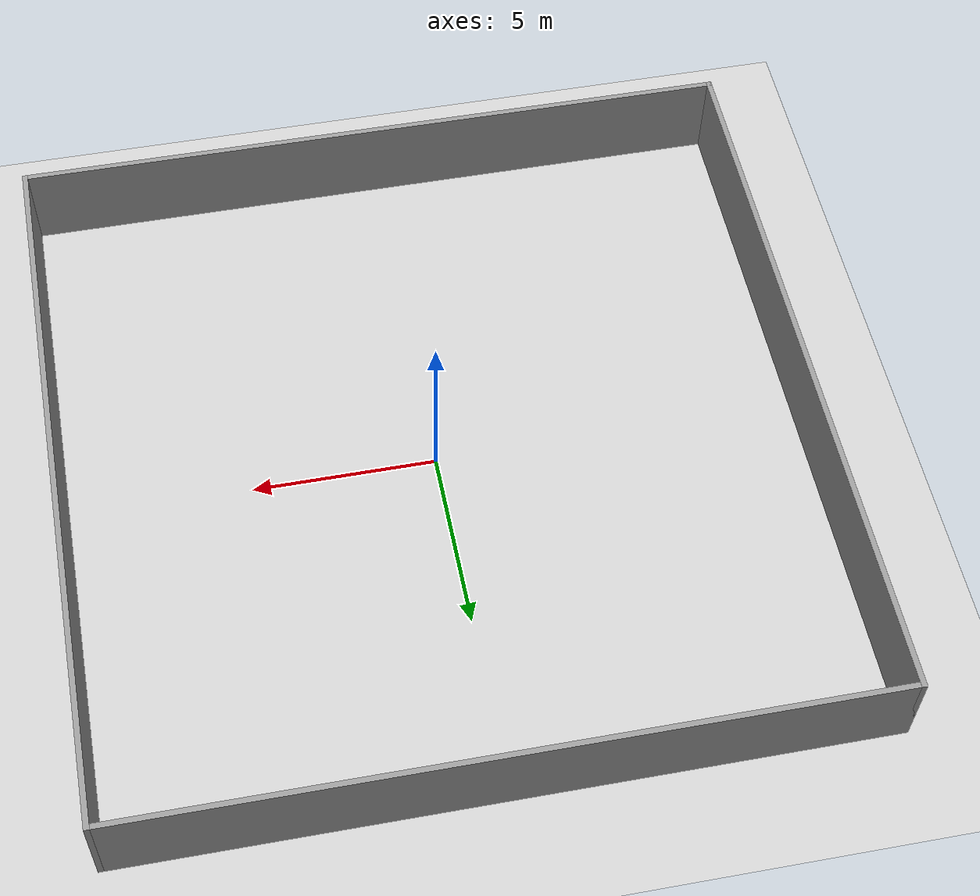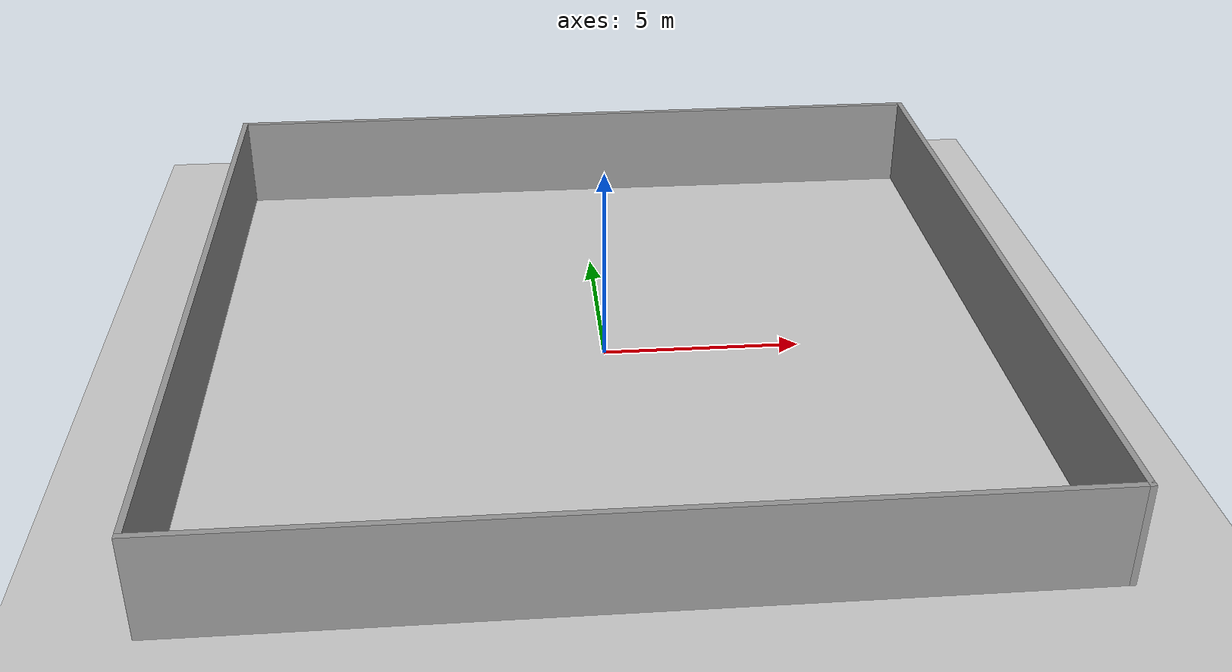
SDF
<sdf version='1.7'>
  <world name='default'>
    <!-- 添加一个方向光源模拟太阳光 -->
    <light name='sun' type='directional'>
      <cast_shadows>1</cast_shadows>
      <pose>0 0 10 0 -0 0</pose>
      <diffuse>0.8 0.8 0.8 1</diffuse>
      <specular>0.2 0.2 0.2 1</specular>
      <attenuation>
        <range>1000</range>
        <constant>0.9</constant>
        <linear>0.01</linear>
        <quadratic>0.001</quadratic>
      </attenuation>
      <direction>-0.5 0.1 -0.9</direction>
      <spot>
        <inner_angle>0</inner_angle>
        <outer_angle>0</outer_angle>
        <falloff>0</falloff>
      </spot>
    </light>

    <model name='ground_plane'>
      <static>1</static>
      <link name='link'>
        <collision name='collision'>
          <geometry>
            <plane>
              <normal>0 0 1</normal> <!-- 平面的法线方向 -->
              <size>100 100</size>
            </plane>
          </geometry>
          <surface> <!-- 定义了接触表面的属性 -->
            <contact>
              <collide_bitmask>65535</collide_bitmask>
              <ode/>
            </contact>
            <friction>
              <ode>
                <mu>100</mu>
                <mu2>100</mu2>
              </ode>
              <torsional>
                <ode/>
              </torsional>
            </friction>
            <bounce/>
          </surface>
          <max_contacts>10</max_contacts>
        </collision>
        <visual name='visual'>
          <cast_shadows>0</cast_shadows>
          <geometry>
            <plane>
              <normal>0 0 1</normal>
              <size>100 100</size>
            </plane>
          </geometry>
          <material>
            <script>
              <!-- 用的是现成的网格，无法缩放 -->
              <uri>file://media/materials/scripts/gazebo.material</uri>
              <name>Gazebo/Grey</name>
            </script>
          </material>
        </visual>
        <self_collide>0</self_collide>
        <enable_wind>0</enable_wind>
        <kinematic>0</kinematic>
      </link>
    </model>

    <gravity>0 0 -9.8</gravity>
    <magnetic_field>6e-06 2.3e-05 -4.2e-05</magnetic_field>
    <atmosphere type='adiabatic'/>

    <!-- 定义世界中的物理属性 -->
    <physics type='ode'>
      <max_step_size>0.01</max_step_size>
      <real_time_factor>1</real_time_factor>
      <real_time_update_rate>100</real_time_update_rate>
    </physics>

    <scene>
      <ambient>0.4 0.4 0.4 1</ambient>
      <background>0.7 0.7 0.7 1</background>
      <shadows>1</shadows>
    </scene>

    <wind/>
    <spherical_coordinates>
      <surface_model>EARTH_WGS84</surface_model>
      <latitude_deg>0</latitude_deg>
      <longitude_deg>0</longitude_deg>
      <elevation>0</elevation>
      <heading_deg>0</heading_deg>
    </spherical_coordinates>

    <model name='Untitled'>
      <link name='Wall_1'>
        <pose>10 0 0 0 0 -1.5708</pose>
        <self_collide>0</self_collide>
        <enable_wind>0</enable_wind>
        <kinematic>0</kinematic>
        <visual name='Wall_1_Visual'>
          <pose>0 0 1.25 0 -0 0</pose>
          <geometry>
            <box>
              <size>20.15 0.15 2.5</size>
            </box>
          </geometry>
          <material>
            <script>
              <uri>file://media/materials/scripts/gazebo.material</uri>
              <name>Gazebo/Grey</name>
            </script>
            <ambient>1 1 1 1</ambient>
            <shader type='pixel'/>
          </material>
          <meta>
            <layer>0</layer>
          </meta>
          <transparency>0</transparency>
          <cast_shadows>1</cast_shadows>
        </visual>
        <collision name='Wall_1_Collision'>
          <laser_retro>0</laser_retro>
          <max_contacts>10</max_contacts>
          <pose>0 0 1.25 0 -0 0</pose>
          <geometry>
            <box>
              <size>10.15 0.15 2.5</size>
            </box>
          </geometry>
          <surface>
            <friction>
              <ode>
                <mu>1</mu>
                <mu2>1</mu2>
                <fdir1>0 0 0</fdir1>
                <slip1>0</slip1>
                <slip2>0</slip2>
              </ode>
              <torsional>
                <coefficient>1</coefficient>
                <patch_radius>0</patch_radius>
                <surface_radius>0</surface_radius>
                <use_patch_radius>1</use_patch_radius>
                <ode>
                  <slip>0</slip>
                </ode>
              </torsional>
            </friction>
            <bounce>
              <restitution_coefficient>0</restitution_coefficient>
              <threshold>1e+06</threshold>
            </bounce>
            <contact>
              <collide_without_contact>0</collide_without_contact>
              <collide_without_contact_bitmask>1</collide_without_contact_bitmask>
              <collide_bitmask>1</collide_bitmask>
              <ode>
                <soft_cfm>0</soft_cfm>
                <soft_erp>0.2</soft_erp>
                <kp>1e+13</kp>
                <kd>1</kd>
                <max_vel>0.01</max_vel>
                <min_depth>0</min_depth>
              </ode>
              <bullet>
                <split_impulse>1</split_impulse>
                <split_impulse_penetration_threshold>-0.01</split_impulse_penetration_threshold>
                <soft_cfm>0</soft_cfm>
                <soft_erp>0.2</soft_erp>
                <kp>1e+13</kp>
                <kd>1</kd>
              </bullet>
            </contact>
          </surface>
        </collision>
      </link>
      <link name='Wall_2'>
        <pose>0 -10 0 0 -0 0</pose>
        <self_collide>0</self_collide>
        <enable_wind>0</enable_wind>
        <kinematic>0</kinematic>
        <visual name='Wall_2_Visual'>
          <pose>0 0 1.25 0 -0 0</pose>
          <geometry>
            <box>
              <size>20.15 0.15 2.5</size>
            </box>
          </geometry>
          <material>
            <script>
              <uri>file://media/materials/scripts/gazebo.material</uri>
              <name>Gazebo/Grey</name>
            </script>
            <ambient>1 1 1 1</ambient>
            <shader type='pixel'/>
          </material>
          <meta>
            <layer>0</layer>
          </meta>
          <transparency>0</transparency>
          <cast_shadows>1</cast_shadows>
        </visual>
        <collision name='Wall_2_Collision'>
          <laser_retro>0</laser_retro>
          <max_contacts>10</max_contacts>
          <pose>0 0 1.25 0 -0 0</pose>
          <geometry>
            <box>
              <size>10.15 0.15 2.5</size>
            </box>
          </geometry>
          <surface>
            <friction>
              <ode>
                <mu>1</mu>
                <mu2>1</mu2>
                <fdir1>0 0 0</fdir1>
                <slip1>0</slip1>
                <slip2>0</slip2>
              </ode>
              <torsional>
                <coefficient>1</coefficient>
                <patch_radius>0</patch_radius>
                <surface_radius>0</surface_radius>
                <use_patch_radius>1</use_patch_radius>
                <ode>
                  <slip>0</slip>
                </ode>
              </torsional>
            </friction>
            <bounce>
              <restitution_coefficient>0</restitution_coefficient>
              <threshold>1e+06</threshold>
            </bounce>
            <contact>
              <collide_without_contact>0</collide_without_contact>
              <collide_without_contact_bitmask>1</collide_without_contact_bitmask>
              <collide_bitmask>1</collide_bitmask>
              <ode>
                <soft_cfm>0</soft_cfm>
                <soft_erp>0.2</soft_erp>
                <kp>1e+13</kp>
                <kd>1</kd>
                <max_vel>0.01</max_vel>
                <min_depth>0</min_depth>
              </ode>
              <bullet>
                <split_impulse>1</split_impulse>
                <split_impulse_penetration_threshold>-0.01</split_impulse_penetration_threshold>
                <soft_cfm>0</soft_cfm>
                <soft_erp>0.2</soft_erp>
                <kp>1e+13</kp>
                <kd>1</kd>
              </bullet>
            </contact>
          </surface>
        </collision>
      </link>
      <link name='Wall_3'>
        <pose>0 10 0 0 -0 0</pose>
        <self_collide>0</self_collide>
        <enable_wind>0</enable_wind>
        <kinematic>0</kinematic>
        <visual name='Wall_3_Visual'>
          <pose>0 0 1.25 0 -0 0</pose>
          <geometry>
            <box>
              <size>20.15 0.15 2.5</size>
            </box>
          </geometry>
          <material>
            <script>
              <uri>file://media/materials/scripts/gazebo.material</uri>
              <name>Gazebo/Grey</name>
            </script>
            <ambient>1 1 1 1</ambient>
            <shader type='pixel'/>
          </material>
          <meta>
            <layer>0</layer>
          </meta>
          <transparency>0</transparency>
          <cast_shadows>1</cast_shadows>
        </visual>
        <collision name='Wall_3_Collision'>
          <laser_retro>0</laser_retro>
          <max_contacts>10</max_contacts>
          <pose>0 0 1.25 0 -0 0</pose>
          <geometry>
            <box>
              <size>10.15 0.15 2.5</size>
            </box>
          </geometry>
          <surface>
            <friction>
              <ode>
                <mu>1</mu>
                <mu2>1</mu2>
                <fdir1>0 0 0</fdir1>
                <slip1>0</slip1>
                <slip2>0</slip2>
              </ode>
              <torsional>
                <coefficient>1</coefficient>
                <patch_radius>0</patch_radius>
                <surface_radius>0</surface_radius>
                <use_patch_radius>1</use_patch_radius>
                <ode>
                  <slip>0</slip>
                </ode>
              </torsional>
            </friction>
            <bounce>
              <restitution_coefficient>0</restitution_coefficient>
              <threshold>1e+06</threshold>
            </bounce>
            <contact>
              <collide_without_contact>0</collide_without_contact>
              <collide_without_contact_bitmask>1</collide_without_contact_bitmask>
              <collide_bitmask>1</collide_bitmask>
              <ode>
                <soft_cfm>0</soft_cfm>
                <soft_erp>0.2</soft_erp>
                <kp>1e+13</kp>
                <kd>1</kd>
                <max_vel>0.01</max_vel>
                <min_depth>0</min_depth>
              </ode>
              <bullet>
                <split_impulse>1</split_impulse>
                <split_impulse_penetration_threshold>-0.01</split_impulse_penetration_threshold>
                <soft_cfm>0</soft_cfm>
                <soft_erp>0.2</soft_erp>
                <kp>1e+13</kp>
                <kd>1</kd>
              </bullet>
            </contact>
          </surface>
        </collision>
      </link>
      <link name='Wall_4'>
        <pose>-10 0 0 0 -0 1.5708</pose>
        <self_collide>0</self_collide>
        <enable_wind>0</enable_wind>
        <kinematic>0</kinematic>
        <visual name='Wall_4_Visual'>
          <pose>0 0 1.25 0 -0 0</pose>
          <geometry>
            <box>
              <size>20.15 0.15 2.5</size>
            </box>
          </geometry>
          <material>
            <script>
              <uri>file://media/materials/scripts/gazebo.material</uri>
              <name>Gazebo/Grey</name>
            </script>
            <ambient>1 1 1 1</ambient>
            <shader type='pixel'/>
          </material>
          <meta>
            <layer>0</layer>
          </meta>
          <transparency>0</transparency>
          <cast_shadows>1</cast_shadows>
        </visual>
        <collision name='Wall_4_Collision'>
          <laser_retro>0</laser_retro>
          <max_contacts>10</max_contacts>
          <pose>0 0 1.25 0 -0 0</pose>
          <geometry>
            <box>
              <size>10.15 0.15 2.5</size>
            </box>
          </geometry>
          <surface>
            <friction>
              <ode>
                <mu>1</mu>
                <mu2>1</mu2>
                <fdir1>0 0 0</fdir1>
                <slip1>0</slip1>
                <slip2>0</slip2>
              </ode>
              <torsional>
                <coefficient>1</coefficient>
                <patch_radius>0</patch_radius>
                <surface_radius>0</surface_radius>
                <use_patch_radius>1</use_patch_radius>
                <ode>
                  <slip>0</slip>
                </ode>
              </torsional>
            </friction>
            <bounce>
              <restitution_coefficient>0</restitution_coefficient>
              <threshold>1e+06</threshold>
            </bounce>
            <contact>
              <collide_without_contact>0</collide_without_contact>
              <collide_without_contact_bitmask>1</collide_without_contact_bitmask>
              <collide_bitmask>1</collide_bitmask>
              <ode>
                <soft_cfm>0</soft_cfm>
                <soft_erp>0.2</soft_erp>
                <kp>1e+13</kp>
                <kd>1</kd>
                <max_vel>0.01</max_vel>
                <min_depth>0</min_depth>
              </ode>
              <bullet>
                <split_impulse>1</split_impulse>
                <split_impulse_penetration_threshold>-0.01</split_impulse_penetration_threshold>
                <soft_cfm>0</soft_cfm>
                <soft_erp>0.2</soft_erp>
                <kp>1e+13</kp>
                <kd>1</kd>
              </bullet>
            </contact>
          </surface>
        </collision>
      </link>
      <static>1</static>
      <allow_auto_disable>1</allow_auto_disable>
      <pose>0 0 0 0 -0 0</pose>
    </model>

    <gui fullscreen='0'>
      <camera name='user_camera'>
        <pose>21.3849 -1.46085 21.9694 0 0.75009 3.09863</pose>
        <view_controller>orbit</view_controller>
        <projection_type>perspective</projection_type>
      </camera>
    </gui>
  </world>
</sdf>
